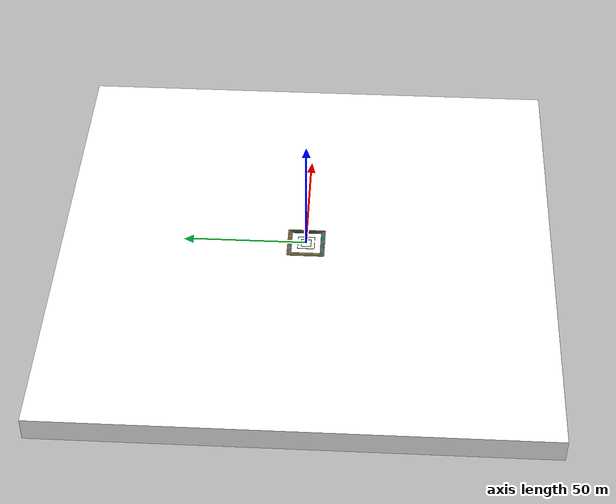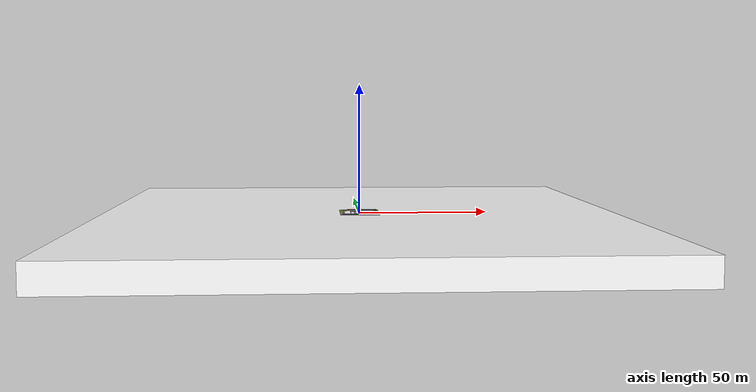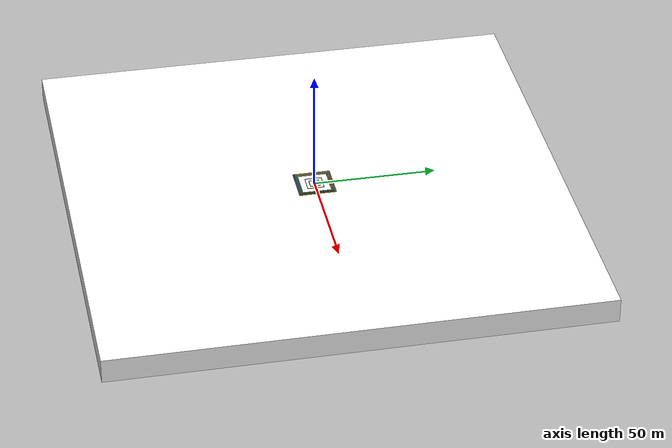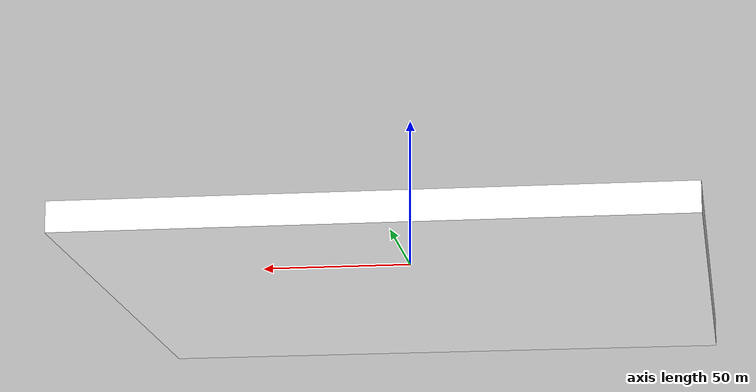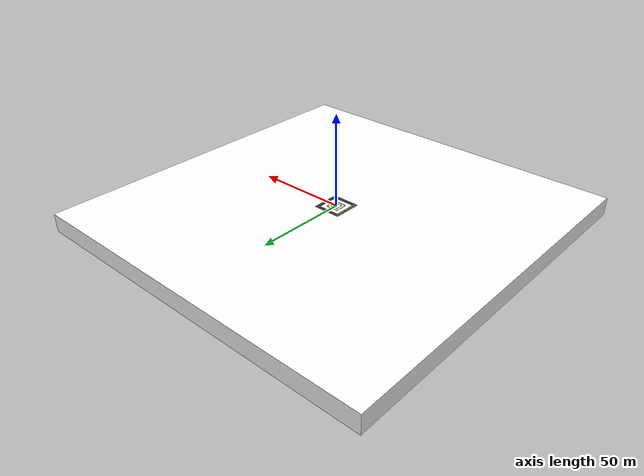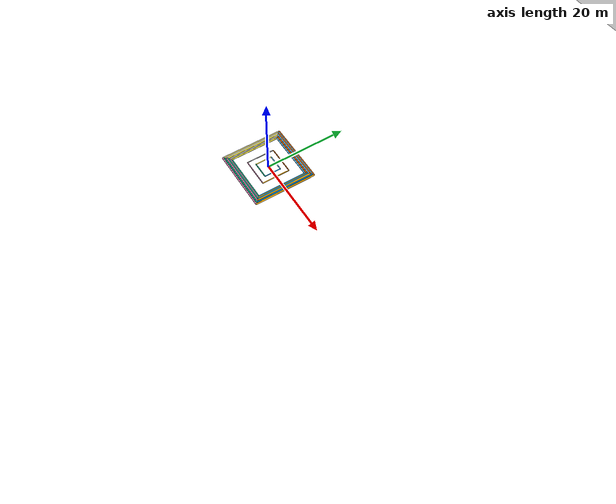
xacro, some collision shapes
<?xml version="1.0"?>
<robot xmlns:xacro="http://www.ros.org/wiki/xacro" name="plane">

  <!-- 可変：段の高さ（厚み）。例: 0.05 → 5cm -->
  <xacro:arg name="step_h_arg" default="0.15"/>
  <xacro:property name="step_h" value="$(arg step_h_arg)"/>

  <!-- 固定：レイアウト（元URDFに合わせて固定） -->
  <xacro:property name="inner_half" value="2.0"/>
  <xacro:property name="inner_bar_w" value="0.2"/>
  <xacro:property name="inner_thick" value="${0.5*step_h}"/>
  <xacro:property name="inner_z" value="${0.25*step_h}"/>

  <xacro:property name="frame_half" value="3.4"/>
  <xacro:property name="frame_bar_w" value="0.15"/>
  <xacro:property name="frame_thick" value="${step_h}"/>
  <xacro:property name="frame_z" value="${0.5*step_h}"/>

  <!-- 階段リングの半径は固定（元の 6.0/6.3/6.6 と 6.9/7.2/7.5）-->
  <xacro:property name="stair_r1" value="6.0"/>
  <xacro:property name="stair_r2" value="6.3"/>
  <xacro:property name="stair_r3" value="6.6"/>
  <xacro:property name="down_r1"  value="6.9"/>
  <xacro:property name="down_r2"  value="7.2"/>
  <xacro:property name="down_r3"  value="7.5"/>
  <xacro:property name="ring_bar_w" value="0.3"/>

    <xacro:macro name="add_ring" params="prefix parent x_half y_half zc bar_w z_h overlap:=0.01">
    <!-- TOP / BOTTOM: X 方向を overlap×2 ぶん延長 -->
    <link name="${prefix}_top">
        <visual>   <origin xyz="0 ${y_half} ${zc}"/>
        <geometry><box size="${2*(x_half + overlap)} ${bar_w} ${z_h}"/></geometry>
        </visual>
        <collision><origin xyz="0 ${y_half} ${zc}"/>
        <geometry><box size="${2*(x_half + overlap)} ${bar_w} ${z_h}"/></geometry>
        </collision>
    </link>
    <joint name="${prefix}_top_joint" type="fixed">
        <parent link="${parent}"/><child link="${prefix}_top"/>
    </joint>

    <link name="${prefix}_bottom">
        <visual>   <origin xyz="0 ${-y_half} ${zc}"/>
        <geometry><box size="${2*(x_half + overlap)} ${bar_w} ${z_h}"/></geometry>
        </visual>
        <collision><origin xyz="0 ${-y_half} ${zc}"/>
        <geometry><box size="${2*(x_half + overlap)} ${bar_w} ${z_h}"/></geometry>
        </collision>
    </link>
    <joint name="${prefix}_bottom_joint" type="fixed">
        <parent link="${parent}"/><child link="${prefix}_bottom"/>
    </joint>

    <!-- LEFT / RIGHT: Y 方向を overlap×2 ぶん延長 -->
    <link name="${prefix}_left">
        <visual>   <origin xyz="${-x_half} 0 ${zc}"/>
        <geometry><box size="${bar_w} ${2*(y_half + overlap)} ${z_h}"/></geometry>
        </visual>
        <collision><origin xyz="${-x_half} 0 ${zc}"/>
        <geometry><box size="${bar_w} ${2*(y_half + overlap)} ${z_h}"/></geometry>
        </collision>
    </link>
    <joint name="${prefix}_left_joint" type="fixed">
        <parent link="${parent}"/><child link="${prefix}_left"/>
    </joint>

    <link name="${prefix}_right">
        <visual>   <origin xyz="${x_half} 0 ${zc}"/>
        <geometry><box size="${bar_w} ${2*(y_half + overlap)} ${z_h}"/></geometry>
        </visual>
        <collision><origin xyz="${x_half} 0 ${zc}"/>
        <geometry><box size="${bar_w} ${2*(y_half + overlap)} ${z_h}"/></geometry>
        </collision>
    </link>
    <joint name="${prefix}_right_joint" type="fixed">
        <parent link="${parent}"/><child link="${prefix}_right"/>
    </joint>
    </xacro:macro>

  <!-- 地面 -->
  <link name="planeLink">
    <contact><lateral_friction value="0.01"/></contact>
    <inertial>
      <origin rpy="0 0 0" xyz="0 0 -0.1"/>
      <mass value="1.0"/>
      <inertia ixx="1.0" ixy="0" ixz="0" iyy="1.0" iyz="0" izz="1.0"/>
    </inertial>
    <visual>
      <origin rpy="0 0 0" xyz="0 0 -0.1"/>
      <geometry><mesh filename="plane100_light.obj" scale="1 1 1"/></geometry>
      <material name="white"><color rgba="1 1 1 1"/></material>
    </visual>
    <collision>
      <origin rpy="0 0 0" xyz="0 0 -5"/>
      <geometry><box size="200 200 10"/></geometry>
    </collision>
  </link>

  <!-- 内側 2m 枠 -->
  <xacro:add_ring prefix="box_inner1" parent="planeLink"
                  x_half="${inner_half}" y_half="${inner_half}"
                  zc="${inner_z}" bar_w="${inner_bar_w}" z_h="${inner_thick}"/>

  <!-- 外枠 6.8m -->
  <xacro:add_ring prefix="box" parent="planeLink"
                  x_half="${frame_half}" y_half="${frame_half}"
                  zc="${frame_z}" bar_w="${frame_bar_w}" z_h="${frame_thick}"/>

  <!-- 階段：高さだけ可変（段1/2/3 = 0.5/1.5/2.5 × step_h） -->
  <!-- 近い外周（stair1〜3） -->
  <xacro:add_ring prefix="box_stair1" parent="planeLink"
                  x_half="${stair_r1}" y_half="${stair_r1}"
                  zc="${0.5*step_h}" bar_w="${ring_bar_w}" z_h="${step_h}"/>
  <xacro:add_ring prefix="box_stair2" parent="planeLink"
                  x_half="${stair_r2}" y_half="${stair_r2}"
                  zc="${1.5*step_h}" bar_w="${ring_bar_w}" z_h="${step_h}"/>
  <xacro:add_ring prefix="box_stair3" parent="planeLink"
                  x_half="${stair_r3}" y_half="${stair_r3}"
                  zc="${2.5*step_h}" bar_w="${ring_bar_w}" z_h="${step_h}"/>

  <!-- さらに外側（down1〜3）。元URDFと同じ高さの並びを維持 -->
  <xacro:add_ring prefix="box_down1" parent="planeLink"
                  x_half="${down_r1}" y_half="${down_r1}"
                  zc="${2.5*step_h}" bar_w="${ring_bar_w}" z_h="${step_h}"/>
  <xacro:add_ring prefix="box_down2" parent="planeLink"
                  x_half="${down_r2}" y_half="${down_r2}"
                  zc="${1.5*step_h}" bar_w="${ring_bar_w}" z_h="${step_h}"/>
  <xacro:add_ring prefix="box_down3" parent="planeLink"
                  x_half="${down_r3}" y_half="${down_r3}"
                  zc="${0.5*step_h}" bar_w="${ring_bar_w}" z_h="${step_h}"/>

</robot>
